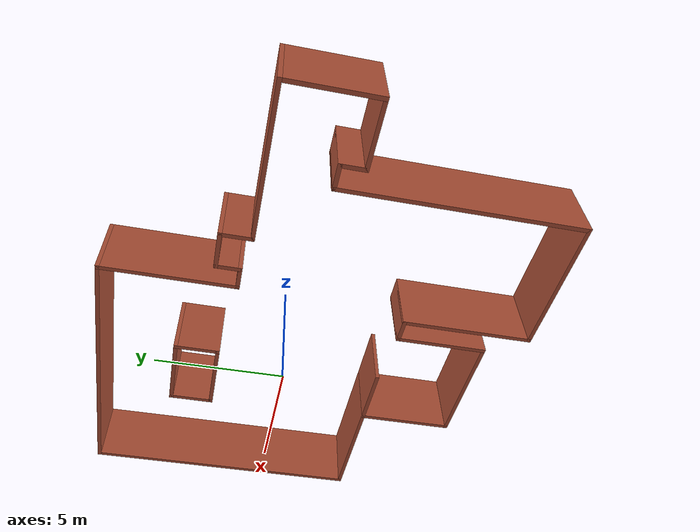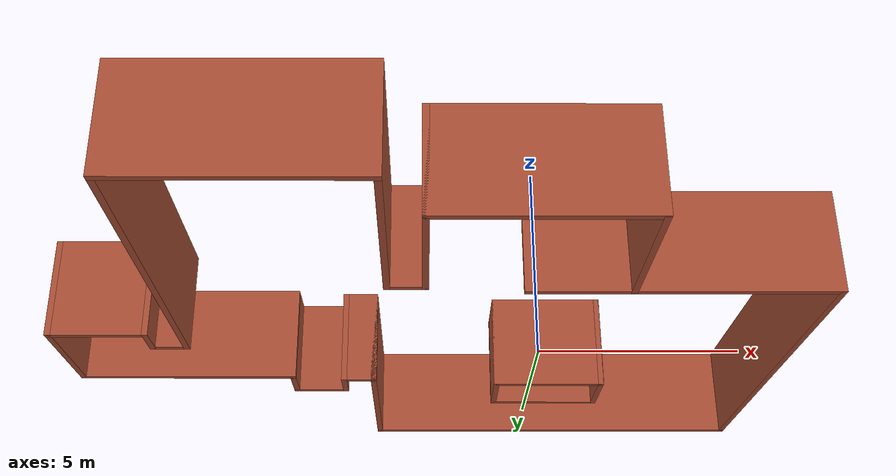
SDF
<?xml version='1.0'?>
<sdf version='1.6'>
  <model name='map_124'>
    <pose frame=''>-2.80492 -0.825217 0 0 -0 0</pose>
    <link name='Wall_21'>
      <collision name='Wall_21_Collision'>
        <geometry>
          <box>
            <size>1 0.15 2.5</size>
          </box>
        </geometry>
        <pose frame=''>0 0 1.25 0 -0 0</pose>
      </collision>
      <visual name='Wall_21_Visual'>
        <pose frame=''>0 0 1.25 0 -0 0</pose>
        <geometry>
          <box>
            <size>1 0.15 2.5</size>
          </box>
        </geometry>
        <material>
          <script>
            <uri>file://media/materials/scripts/gazebo.material</uri>
            <name>Gazebo/Bricks</name>
          </script>
          <ambient>1 1 1 1</ambient>
        </material>
        <meta>
          <layer>0</layer>
        </meta>
      </visual>
      <pose frame=''>-2.225 3.55 0 0 -0 1.5708</pose>
    </link>
    <link name='Wall_22'>
      <collision name='Wall_22_Collision'>
        <geometry>
          <box>
            <size>1.5 0.15 2.5</size>
          </box>
        </geometry>
        <pose frame=''>0 0 1.25 0 -0 0</pose>
      </collision>
      <visual name='Wall_22_Visual'>
        <pose frame=''>0 0 1.25 0 -0 0</pose>
        <geometry>
          <box>
            <size>1.5 0.15 2.5</size>
          </box>
        </geometry>
        <material>
          <script>
            <uri>file://media/materials/scripts/gazebo.material</uri>
            <name>Gazebo/Bricks</name>
          </script>
          <ambient>1 1 1 1</ambient>
        </material>
        <meta>
          <layer>0</layer>
        </meta>
      </visual>
      <pose frame=''>-2.9 3.975 0 0 -0 3.14159</pose>
    </link>
    <link name='Wall_23'>
      <collision name='Wall_23_Collision'>
        <geometry>
          <box>
            <size>1.25 0.15 2.5</size>
          </box>
        </geometry>
        <pose frame=''>0 0 1.25 0 -0 0</pose>
      </collision>
      <visual name='Wall_23_Visual'>
        <pose frame=''>0 0 1.25 0 -0 0</pose>
        <geometry>
          <box>
            <size>1.25 0.15 2.5</size>
          </box>
        </geometry>
        <material>
          <script>
            <uri>file://media/materials/scripts/gazebo.material</uri>
            <name>Gazebo/Bricks</name>
          </script>
          <ambient>1 1 1 1</ambient>
        </material>
        <meta>
          <layer>0</layer>
        </meta>
      </visual>
      <pose frame=''>-3.575 3.425 0 0 -0 -1.5708</pose>
    </link>
    <link name='Wall_24'>
      <collision name='Wall_24_Collision'>
        <geometry>
          <box>
            <size>5.75 0.15 2.5</size>
          </box>
        </geometry>
        <pose frame=''>0 0 1.25 0 -0 0</pose>
      </collision>
      <visual name='Wall_24_Visual'>
        <pose frame=''>0 0 1.25 0 -0 0</pose>
        <geometry>
          <box>
            <size>5.75 0.15 2.5</size>
          </box>
        </geometry>
        <material>
          <script>
            <uri>file://media/materials/scripts/gazebo.material</uri>
            <name>Gazebo/Bricks</name>
          </script>
          <ambient>1 1 1 1</ambient>
        </material>
        <meta>
          <layer>0</layer>
        </meta>
      </visual>
      <pose frame=''>-6.375 2.875 0 0 -0 3.14159</pose>
    </link>
    <link name='Wall_25'>
      <collision name='Wall_25_Collision'>
        <geometry>
          <box>
            <size>3.25 0.15 2.5</size>
          </box>
        </geometry>
        <pose frame=''>0 0 1.25 0 -0 0</pose>
      </collision>
      <visual name='Wall_25_Visual'>
        <pose frame=''>0 0 1.25 0 -0 0</pose>
        <geometry>
          <box>
            <size>3.25 0.15 2.5</size>
          </box>
        </geometry>
        <material>
          <script>
            <uri>file://media/materials/scripts/gazebo.material</uri>
            <name>Gazebo/Bricks</name>
          </script>
          <ambient>1 1 1 1</ambient>
        </material>
        <meta>
          <layer>0</layer>
        </meta>
      </visual>
      <pose frame=''>-9.175 1.325 0 0 -0 -1.5708</pose>
    </link>
    <link name='Wall_26'>
      <collision name='Wall_26_Collision'>
        <geometry>
          <box>
            <size>2.5 0.15 2.5</size>
          </box>
        </geometry>
        <pose frame=''>0 0 1.25 0 -0 0</pose>
      </collision>
      <visual name='Wall_26_Visual'>
        <pose frame=''>0 0 1.25 0 -0 0</pose>
        <geometry>
          <box>
            <size>2.5 0.15 2.5</size>
          </box>
        </geometry>
        <material>
          <script>
            <uri>file://media/materials/scripts/gazebo.material</uri>
            <name>Gazebo/Bricks</name>
          </script>
          <ambient>1 1 1 1</ambient>
        </material>
        <meta>
          <layer>0</layer>
        </meta>
      </visual>
      <pose frame=''>-8 -0.225 0 0 -0 0</pose>
    </link>
    <link name='Wall_27'>
      <collision name='Wall_27_Collision'>
        <geometry>
          <box>
            <size>1 0.15 2.5</size>
          </box>
        </geometry>
        <pose frame=''>0 0 1.25 0 -0 0</pose>
      </collision>
      <visual name='Wall_27_Visual'>
        <pose frame=''>0 0 1.25 0 -0 0</pose>
        <geometry>
          <box>
            <size>1 0.15 2.5</size>
          </box>
        </geometry>
        <material>
          <script>
            <uri>file://media/materials/scripts/gazebo.material</uri>
            <name>Gazebo/Bricks</name>
          </script>
          <ambient>1 1 1 1</ambient>
        </material>
        <meta>
          <layer>0</layer>
        </meta>
      </visual>
      <pose frame=''>-6.825 0.2 0 0 -0 1.5708</pose>
    </link>
    <link name='Wall_28'>
      <collision name='Wall_28_Collision'>
        <geometry>
          <box>
            <size>1 0.15 2.5</size>
          </box>
        </geometry>
        <pose frame=''>0 0 1.25 0 -0 0</pose>
      </collision>
      <visual name='Wall_28_Visual'>
        <pose frame=''>0 0 1.25 0 -0 0</pose>
        <geometry>
          <box>
            <size>1 0.15 2.5</size>
          </box>
        </geometry>
        <material>
          <script>
            <uri>file://media/materials/scripts/gazebo.material</uri>
            <name>Gazebo/Bricks</name>
          </script>
          <ambient>1 1 1 1</ambient>
        </material>
        <meta>
          <layer>0</layer>
        </meta>
      </visual>
      <pose frame=''>-6.4 0.625 0 0 -0 0</pose>
    </link>
    <link name='Wall_29'>
      <collision name='Wall_29_Collision'>
        <geometry>
          <box>
            <size>8.75 0.15 2.5</size>
          </box>
        </geometry>
        <pose frame=''>0 0 1.25 0 -0 0</pose>
      </collision>
      <visual name='Wall_29_Visual'>
        <pose frame=''>0 0 1.25 0 -0 0</pose>
        <geometry>
          <box>
            <size>8.75 0.15 2.5</size>
          </box>
        </geometry>
        <material>
          <script>
            <uri>file://media/materials/scripts/gazebo.material</uri>
            <name>Gazebo/Bricks</name>
          </script>
          <ambient>1 1 1 1</ambient>
        </material>
        <meta>
          <layer>0</layer>
        </meta>
      </visual>
      <pose frame=''>-5.975 -3.675 0 0 -0 -1.5708</pose>
    </link>
    <link name='Wall_30'>
      <collision name='Wall_30_Collision'>
        <geometry>
          <box>
            <size>5.25 0.15 2.5</size>
          </box>
        </geometry>
        <pose frame=''>0 0 1.25 0 -0 0</pose>
      </collision>
      <visual name='Wall_30_Visual'>
        <pose frame=''>0 0 1.25 0 -0 0</pose>
        <geometry>
          <box>
            <size>5.25 0.15 2.5</size>
          </box>
        </geometry>
        <material>
          <script>
            <uri>file://media/materials/scripts/gazebo.material</uri>
            <name>Gazebo/Bricks</name>
          </script>
          <ambient>1 1 1 1</ambient>
        </material>
        <meta>
          <layer>0</layer>
        </meta>
      </visual>
      <pose frame=''>-3.425 -7.975 0 0 -0 0</pose>
    </link>
    <link name='Wall_31'>
      <collision name='Wall_31_Collision'>
        <geometry>
          <box>
            <size>5 0.15 2.5</size>
          </box>
        </geometry>
        <pose frame=''>0 0 1.25 0 -0 0</pose>
      </collision>
      <visual name='Wall_31_Visual'>
        <pose frame=''>0 0 1.25 0 -0 0</pose>
        <geometry>
          <box>
            <size>5 0.15 2.5</size>
          </box>
        </geometry>
        <material>
          <script>
            <uri>file://media/materials/scripts/gazebo.material</uri>
            <name>Gazebo/Bricks</name>
          </script>
          <ambient>1 1 1 1</ambient>
        </material>
        <meta>
          <layer>0</layer>
        </meta>
      </visual>
      <pose frame=''>-0.875 -5.55 0 0 -0 1.5708</pose>
    </link>
    <link name='Wall_32'>
      <collision name='Wall_32_Collision'>
        <geometry>
          <box>
            <size>1 0.15 2.5</size>
          </box>
        </geometry>
        <pose frame=''>0 0 1.25 0 -0 0</pose>
      </collision>
      <visual name='Wall_32_Visual'>
        <pose frame=''>0 0 1.25 0 -0 0</pose>
        <geometry>
          <box>
            <size>1 0.15 2.5</size>
          </box>
        </geometry>
        <material>
          <script>
            <uri>file://media/materials/scripts/gazebo.material</uri>
            <name>Gazebo/Bricks</name>
          </script>
          <ambient>1 1 1 1</ambient>
        </material>
        <meta>
          <layer>0</layer>
        </meta>
      </visual>
      <pose frame=''>-0.450001 -3.125 0 0 -0 0</pose>
    </link>
    <link name='Wall_33'>
      <collision name='Wall_33_Collision'>
        <geometry>
          <box>
            <size>3.5 0.15 2.5</size>
          </box>
        </geometry>
        <pose frame=''>0 0 1.25 0 -0 0</pose>
      </collision>
      <visual name='Wall_33_Visual'>
        <pose frame=''>0 0 1.25 0 -0 0</pose>
        <geometry>
          <box>
            <size>3.5 0.15 2.5</size>
          </box>
        </geometry>
        <material>
          <script>
            <uri>file://media/materials/scripts/gazebo.material</uri>
            <name>Gazebo/Bricks</name>
          </script>
          <ambient>1 1 1 1</ambient>
        </material>
        <meta>
          <layer>0</layer>
        </meta>
      </visual>
      <pose frame=''>-0.025 -4.8 0 0 -0 -1.5708</pose>
    </link>
    <link name='Wall_35'>
      <collision name='Wall_35_Collision'>
        <geometry>
          <box>
            <size>4.75 0.15 2.5</size>
          </box>
        </geometry>
        <pose frame=''>0 0 1.25 0 -0 0</pose>
      </collision>
      <visual name='Wall_35_Visual'>
        <pose frame=''>0 0 1.25 0 -0 0</pose>
        <geometry>
          <box>
            <size>4.75 0.15 2.5</size>
          </box>
        </geometry>
        <material>
          <script>
            <uri>file://media/materials/scripts/gazebo.material</uri>
            <name>Gazebo/Bricks</name>
          </script>
          <ambient>1 1 1 1</ambient>
        </material>
        <meta>
          <layer>0</layer>
        </meta>
      </visual>
      <pose frame=''>2.275 -6.475 0 0 -0 0</pose>
    </link>
    <link name='Wall_36'>
      <collision name='Wall_36_Collision'>
        <geometry>
          <box>
            <size>3.75 0.15 2.5</size>
          </box>
        </geometry>
        <pose frame=''>0 0 1.25 0 -0 0</pose>
      </collision>
      <visual name='Wall_36_Visual'>
        <pose frame=''>0 0 1.25 0 -0 0</pose>
        <geometry>
          <box>
            <size>3.75 0.15 2.5</size>
          </box>
        </geometry>
        <material>
          <script>
            <uri>file://media/materials/scripts/gazebo.material</uri>
            <name>Gazebo/Bricks</name>
          </script>
          <ambient>1 1 1 1</ambient>
        </material>
        <meta>
          <layer>0</layer>
        </meta>
      </visual>
      <pose frame=''>4.575 -4.675 0 0 -0 1.5708</pose>
    </link>
    <link name='Wall_37'>
      <collision name='Wall_37_Collision'>
        <geometry>
          <box>
            <size>2.5 0.15 2.5</size>
          </box>
        </geometry>
        <pose frame=''>0 0 1.25 0 -0 0</pose>
      </collision>
      <visual name='Wall_37_Visual'>
        <pose frame=''>0 0 1.25 0 -0 0</pose>
        <geometry>
          <box>
            <size>2.5 0.15 2.5</size>
          </box>
        </geometry>
        <material>
          <script>
            <uri>file://media/materials/scripts/gazebo.material</uri>
            <name>Gazebo/Bricks</name>
          </script>
          <ambient>1 1 1 1</ambient>
        </material>
        <meta>
          <layer>0</layer>
        </meta>
      </visual>
      <pose frame=''>3.4 -2.875 0 0 -0 3.14159</pose>
    </link>
    <link name='Wall_39'>
      <collision name='Wall_39_Collision'>
        <geometry>
          <box>
            <size>4.75 0.15 2.5</size>
          </box>
        </geometry>
        <pose frame=''>0 0 1.25 0 -0 0</pose>
      </collision>
      <visual name='Wall_39_Visual'>
        <pose frame=''>0 0 1.25 0 -0 0</pose>
        <geometry>
          <box>
            <size>4.75 0.15 2.5</size>
          </box>
        </geometry>
        <material>
          <script>
            <uri>file://media/materials/scripts/gazebo.material</uri>
            <name>Gazebo/Bricks</name>
          </script>
          <ambient>1 1 1 1</ambient>
        </material>
        <meta>
          <layer>0</layer>
        </meta>
      </visual>
      <pose frame=''>6.875 -2.875 0 0 -0 0</pose>
    </link>
    <link name='Wall_40'>
      <collision name='Wall_40_Collision'>
        <geometry>
          <box>
            <size>11 0.15 2.5</size>
          </box>
        </geometry>
        <pose frame=''>0 0 1.25 0 -0 0</pose>
      </collision>
      <visual name='Wall_40_Visual'>
        <pose frame=''>0 0 1.25 0 -0 0</pose>
        <geometry>
          <box>
            <size>11 0.15 2.5</size>
          </box>
        </geometry>
        <material>
          <script>
            <uri>file://media/materials/scripts/gazebo.material</uri>
            <name>Gazebo/Bricks</name>
          </script>
          <ambient>1 1 1 1</ambient>
        </material>
        <meta>
          <layer>0</layer>
        </meta>
      </visual>
      <pose frame=''>9.175 2.55 0 0 -0 1.5708</pose>
    </link>
    <link name='Wall_41'>
      <collision name='Wall_41_Collision'>
        <geometry>
          <box>
            <size>10.75 0.15 2.5</size>
          </box>
        </geometry>
        <pose frame=''>0 0 1.25 0 -0 0</pose>
      </collision>
      <visual name='Wall_41_Visual'>
        <pose frame=''>0 0 1.25 0 -0 0</pose>
        <geometry>
          <box>
            <size>10.75 0.15 2.5</size>
          </box>
        </geometry>
        <material>
          <script>
            <uri>file://media/materials/scripts/gazebo.material</uri>
            <name>Gazebo/Bricks</name>
          </script>
          <ambient>1 1 1 1</ambient>
        </material>
        <meta>
          <layer>0</layer>
        </meta>
      </visual>
      <pose frame=''>3.875 7.975 0 0 -0 3.14159</pose>
    </link>
    <link name='Wall_45'>
      <collision name='Wall_45_Collision'>
        <geometry>
          <box>
            <size>5 0.15 2.5</size>
          </box>
        </geometry>
        <pose frame=''>0 0 1.25 0 -0 0</pose>
      </collision>
      <visual name='Wall_45_Visual'>
        <pose frame=''>0 0 1.25 0 -0 0</pose>
        <geometry>
          <box>
            <size>5 0.15 2.5</size>
          </box>
        </geometry>
        <material>
          <script>
            <uri>file://media/materials/scripts/gazebo.material</uri>
            <name>Gazebo/Bricks</name>
          </script>
          <ambient>1 1 1 1</ambient>
        </material>
        <meta>
          <layer>0</layer>
        </meta>
      </visual>
      <pose frame=''>-1.425 5.55 0 0 -0 -1.5708</pose>
    </link>
    <link name='Wall_46'>
      <collision name='Wall_46_Collision'>
        <geometry>
          <box>
            <size>0.95 0.15 2.5</size>
          </box>
        </geometry>
        <pose frame=''>0 0 1.25 0 -0 0</pose>
      </collision>
      <visual name='Wall_46_Visual'>
        <pose frame=''>0 0 1.25 0 -0 0</pose>
        <geometry>
          <box>
            <size>0.95 0.15 2.5</size>
          </box>
        </geometry>
        <material>
          <script>
            <uri>file://media/materials/scripts/gazebo.material</uri>
            <name>Gazebo/Bricks</name>
          </script>
          <ambient>1 1 1 1</ambient>
        </material>
        <meta>
          <layer>0</layer>
        </meta>
      </visual>
      <pose frame=''>-1.825 3.125 0 0 -0 3.14159</pose>
    </link>
    <link name='Wall_48'>
      <collision name='Wall_48_Collision'>
        <geometry>
          <box>
            <size>1.75 0.15 2.5</size>
          </box>
        </geometry>
        <pose frame=''>0 0 1.25 0 -0 0</pose>
      </collision>
      <visual name='Wall_48_Visual'>
        <pose frame=''>0 0 1.25 0 -0 0</pose>
        <geometry>
          <box>
            <size>1.75 0.15 2.5</size>
          </box>
        </geometry>
        <material>
          <script>
            <uri>file://media/materials/scripts/gazebo.material</uri>
            <name>Gazebo/Bricks</name>
          </script>
          <ambient>1 1 1 1</ambient>
        </material>
        <meta>
          <layer>0</layer>
        </meta>
      </visual>
      <pose frame=''>1.92464 4.2849 0 0 -0 -1.5708</pose>
    </link>
    <link name='Wall_49'>
      <collision name='Wall_49_Collision'>
        <geometry>
          <box>
            <size>3 0.15 2.5</size>
          </box>
        </geometry>
        <pose frame=''>0 0 1.25 0 -0 0</pose>
      </collision>
      <visual name='Wall_49_Visual'>
        <pose frame=''>0 0 1.25 0 -0 0</pose>
        <geometry>
          <box>
            <size>3 0.15 2.5</size>
          </box>
        </geometry>
        <material>
          <script>
            <uri>file://media/materials/scripts/gazebo.material</uri>
            <name>Gazebo/Bricks</name>
          </script>
          <ambient>1 1 1 1</ambient>
        </material>
        <meta>
          <layer>0</layer>
        </meta>
      </visual>
      <pose frame=''>3.34964 3.4849 0 0 -0 0</pose>
    </link>
    <link name='Wall_50'>
      <collision name='Wall_50_Collision'>
        <geometry>
          <box>
            <size>1.75 0.15 2.5</size>
          </box>
        </geometry>
        <pose frame=''>0 0 1.25 0 -0 0</pose>
      </collision>
      <visual name='Wall_50_Visual'>
        <pose frame=''>0 0 1.25 0 -0 0</pose>
        <geometry>
          <box>
            <size>1.75 0.15 2.5</size>
          </box>
        </geometry>
        <material>
          <script>
            <uri>file://media/materials/scripts/gazebo.material</uri>
            <name>Gazebo/Bricks</name>
          </script>
          <ambient>1 1 1 1</ambient>
        </material>
        <meta>
          <layer>0</layer>
        </meta>
      </visual>
      <pose frame=''>4.77464 4.2849 0 0 -0 1.5708</pose>
    </link>
    <link name='Wall_51'>
      <collision name='Wall_51_Collision'>
        <geometry>
          <box>
            <size>3 0.15 2.5</size>
          </box>
        </geometry>
        <pose frame=''>0 0 1.25 0 -0 0</pose>
      </collision>
      <visual name='Wall_51_Visual'>
        <pose frame=''>0 0 1.25 0 -0 0</pose>
        <geometry>
          <box>
            <size>3 0.15 2.5</size>
          </box>
        </geometry>
        <material>
          <script>
            <uri>file://media/materials/scripts/gazebo.material</uri>
            <name>Gazebo/Bricks</name>
          </script>
          <ambient>1 1 1 1</ambient>
        </material>
        <meta>
          <layer>0</layer>
        </meta>
      </visual>
      <pose frame=''>3.34964 5.0849 0 0 -0 3.14159</pose>
    </link>
    <static>1</static>
  </model>
</sdf>
